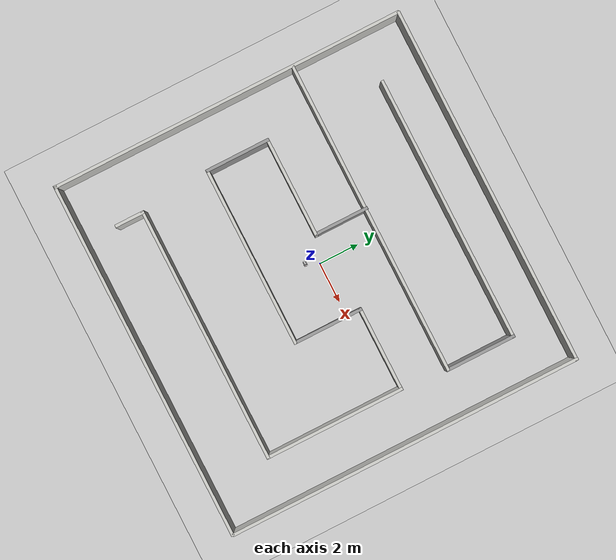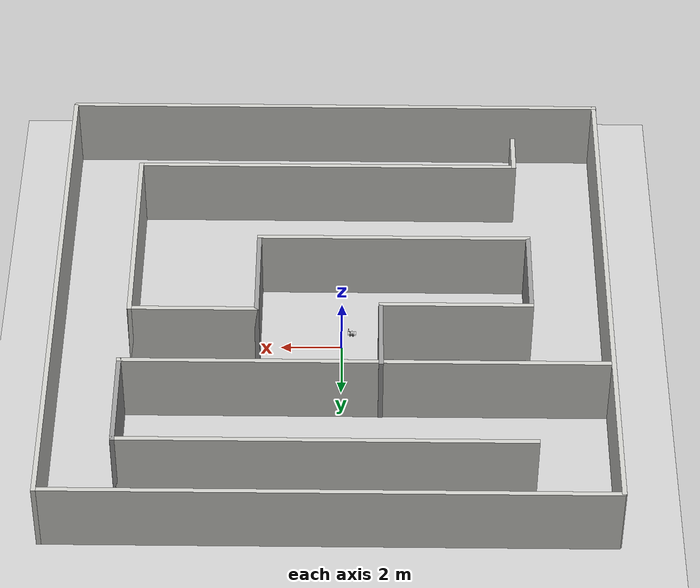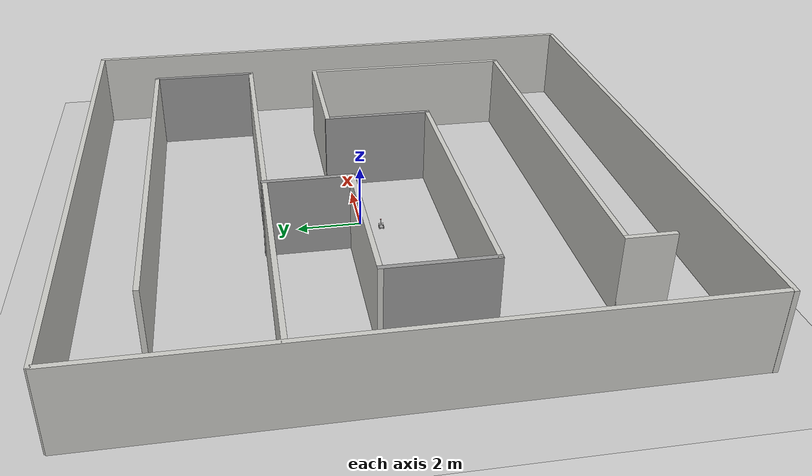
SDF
<sdf version="1.7">
 <world name="default">
  <light name="sun" type="directional">
   <pose>0 0 10 0 -0 0</pose>
   <diffuse>0.8 0.8 0.8 1</diffuse>
   <specular>0.2 0.2 0.2 1</specular>
   <attenuation>
    <range>1000</range>
    <constant>0.9</constant>
    <linear>0.01</linear>
    <quadratic>0.001</quadratic>
   </attenuation>
   <direction>-0.5 0.1 -0.9</direction>
   <spot><inner_angle>0</inner_angle><outer_angle>0</outer_angle><falloff>0</falloff></spot>
  </light>
  <model name="ground_plane">
   <static>1</static>
   <link name="link">
    <collision name="collision">
     <geometry><plane><normal>0 0 1</normal><size>100 100</size></plane></geometry>
     <surface><friction><ode><mu>100</mu><mu2>50</mu2></ode></friction></surface>
    </collision>
    <visual name="visual">
     <cast_shadows>0</cast_shadows>
     <geometry><plane><normal>0 0 1</normal><size>100 100</size></plane></geometry>
     <material>
      <script><uri>file://media/materials/scripts/gazebo.material</uri><name>Gazebo/Grey</name></script>
     </material>
    </visual>
   </link>
  </model>
  <gravity>0 0 -9.8</gravity>
  <magnetic_field>6e-06 2.3e-05 -4.2e-05</magnetic_field>
  <atmosphere type="adiabatic"/>
  <physics type="ode">
   <max_step_size>0.001</max_step_size>
   <real_time_factor>1</real_time_factor>
   <real_time_update_rate>1000</real_time_update_rate>
  </physics>
  <scene><ambient>0.4 0.4 0.4 1</ambient><background>0.7 0.7 0.7 1</background><shadows>1</shadows></scene>
  <audio><device>default</device></audio>
  <spherical_coordinates>
   <surface_model>EARTH_WGS84</surface_model>
   <latitude_deg>0</latitude_deg>
   <longitude_deg>0</longitude_deg>
   <elevation>0</elevation>
   <heading_deg>0</heading_deg>
  </spherical_coordinates>
  <model name="modelTest206">
   <pose>0.329469 -0.393625 0 0 -0 0</pose>
   <link name="Wall_0">
    <collision name="Wall_0_Collision">
     <geometry><box><size>17.75 0.15 2.5</size></box></geometry>
     <pose>0 0 1.25 0 -0 0</pose>
    </collision>
    <visual name="Wall_0_Visual">
     <pose>0 0 1.25 0 -0 0</pose>
     <geometry><box><size>17.75 0.15 2.5</size></box></geometry>
     <material>
      <script><uri>file://media/materials/scripts/gazebo.material</uri><name>Gazebo/CeilingTiled</name></script>
      <ambient>1 1 1 1</ambient>
     </material>
     <meta><layer>0</layer></meta>
    </visual>
    <pose>-8.93998 -0.009696 0 0 -0 1.5708</pose>
   </link>
   <link name="Wall_10">
    <collision name="Wall_10_Collision">
     <geometry><box><size>15.75 0.15 2.5</size></box></geometry>
     <pose>0 0 1.25 0 -0 0</pose>
    </collision>
    <visual name="Wall_10_Visual">
     <pose>0 0 1.25 0 -0 0</pose>
     <geometry><box><size>15.75 0.15 2.5</size></box></geometry>
     <material>
      <script><uri>file://media/materials/scripts/gazebo.material</uri><name>Gazebo/CeilingTiled</name></script>
      <ambient>1 1 1 1</ambient>
     </material>
     <meta><layer>0</layer></meta>
    </visual>
    <pose>-1.09895 3.38175 0 0 -0 3.14159</pose>
   </link>
   <link name="Wall_12">
    <collision name="Wall_12_Collision">
     <geometry><box><size>2.75 0.15 2.5</size></box></geometry>
     <pose>0 0 1.25 0 -0 0</pose>
    </collision>
    <visual name="Wall_12_Visual">
     <pose>0 0 1.25 0 -0 0</pose>
     <geometry><box><size>2.75 0.15 2.5</size></box></geometry>
     <material>
      <script><uri>file://media/materials/scripts/gazebo.material</uri><name>Gazebo/Grey</name></script>
      <ambient>1 1 1 1</ambient>
     </material>
     <meta><layer>0</layer></meta>
    </visual>
    <pose>-1.58474 2.11439 0 0 -0 -1.5708</pose>
   </link>
   <link name="Wall_13">
    <collision name="Wall_13_Collision">
     <geometry><box><size>5 0.15 2.5</size></box></geometry>
     <pose>0 0 1.25 0 -0 0</pose>
    </collision>
    <visual name="Wall_13_Visual">
     <pose>0 0 1.25 0 -0 0</pose>
     <geometry><box><size>5 0.15 2.5</size></box></geometry>
     <material>
      <script><uri>file://media/materials/scripts/gazebo.material</uri><name>Gazebo/CeilingTiled</name></script>
      <ambient>1 1 1 1</ambient>
     </material>
     <meta><layer>0</layer></meta>
    </visual>
    <pose>-4.00974 0.814392 0 0 -0 3.14159</pose>
   </link>
   <link name="Wall_14">
    <collision name="Wall_14_Collision">
     <geometry><box><size>3.25 0.15 2.5</size></box></geometry>
     <pose>0 0 1.25 0 -0 0</pose>
    </collision>
    <visual name="Wall_14_Visual">
     <pose>0 0 1.25 0 -0 0</pose>
     <geometry><box><size>3.25 0.15 2.5</size></box></geometry>
     <material>
      <script><uri>file://media/materials/scripts/gazebo.material</uri><name>Gazebo/Grey</name></script>
      <ambient>1 1 1 1</ambient>
     </material>
     <meta><layer>0</layer></meta>
    </visual>
    <pose>-6.43474 -0.735608 0 0 -0 -1.5708</pose>
   </link>
   <link name="Wall_15">
    <collision name="Wall_15_Collision">
     <geometry><box><size>9 0.15 2.5</size></box></geometry>
     <pose>0 0 1.25 0 -0 0</pose>
    </collision>
    <visual name="Wall_15_Visual">
     <pose>0 0 1.25 0 -0 0</pose>
     <geometry><box><size>9 0.15 2.5</size></box></geometry>
     <material>
      <script><uri>file://media/materials/scripts/gazebo.material</uri><name>Gazebo/CeilingTiled</name></script>
      <ambient>1 1 1 1</ambient>
     </material>
     <meta><layer>0</layer></meta>
    </visual>
    <pose>-2.00974 -2.28561 0 0 -0 0</pose>
   </link>
   <link name="Wall_16">
    <collision name="Wall_16_Collision">
     <geometry><box><size>3.5 0.15 2.5</size></box></geometry>
     <pose>0 0 1.25 0 -0 0</pose>
    </collision>
    <visual name="Wall_16_Visual">
     <pose>0 0 1.25 0 -0 0</pose>
     <geometry><box><size>3.5 0.15 2.5</size></box></geometry>
     <material>
      <script><uri>file://media/materials/scripts/gazebo.material</uri><name>Gazebo/Grey</name></script>
      <ambient>1 1 1 1</ambient>
     </material>
     <meta><layer>0</layer></meta>
    </visual>
    <pose>2.41526 -0.610608 0 0 -0 1.5708</pose>
   </link>
   <link name="Wall_17">
    <collision name="Wall_17_Collision">
     <geometry><box><size>4.25 0.15 2.5</size></box></geometry>
     <pose>0 0 1.25 0 -0 0</pose>
    </collision>
    <visual name="Wall_17_Visual">
     <pose>0 0 1.25 0 -0 0</pose>
     <geometry><box><size>4.25 0.15 2.5</size></box></geometry>
     <material>
      <script><uri>file://media/materials/scripts/gazebo.material</uri><name>Gazebo/CeilingTiled</name></script>
      <ambient>1 1 1 1</ambient>
     </material>
     <meta><layer>0</layer></meta>
    </visual>
    <pose>4.46526 1.06439 0 0 -0 0</pose>
   </link>
   <link name="Wall_18">
    <collision name="Wall_18_Collision">
     <geometry><box><size>7 0.15 2.5</size></box></geometry>
     <pose>0 0 1.25 0 -0 0</pose>
    </collision>
    <visual name="Wall_18_Visual">
     <pose>0 0 1.25 0 -0 0</pose>
     <geometry><box><size>7 0.15 2.5</size></box></geometry>
     <material>
      <script><uri>file://media/materials/scripts/gazebo.material</uri><name>Gazebo/CeilingTiled</name></script>
      <ambient>1 1 1 1</ambient>
     </material>
     <meta><layer>0</layer></meta>
    </visual>
    <pose>6.51526 -2.36061 0 0 -0 -1.5708</pose>
   </link>
   <link name="Wall_19">
    <collision name="Wall_19_Collision">
     <geometry><box><size>12.75 0.15 2.5</size></box></geometry>
     <pose>0 0 1.25 0 -0 0</pose>
    </collision>
    <visual name="Wall_19_Visual">
     <pose>0 0 1.25 0 -0 0</pose>
     <geometry><box><size>12.75 0.15 2.5</size></box></geometry>
     <material>
      <script><uri>file://media/materials/scripts/gazebo.material</uri><name>Gazebo/CeilingTiled</name></script>
      <ambient>1 1 1 1</ambient>
     </material>
     <meta><layer>0</layer></meta>
    </visual>
    <pose>0.215264 -5.78561 0 0 -0 3.14159</pose>
   </link>
   <link name="Wall_2">
    <collision name="Wall_2_Collision">
     <geometry><box><size>18 0.15 2.5</size></box></geometry>
     <pose>0 0 1.25 0 -0 0</pose>
    </collision>
    <visual name="Wall_2_Visual">
     <pose>0 0 1.25 0 -0 0</pose>
     <geometry><box><size>18 0.15 2.5</size></box></geometry>
     <material>
      <script><uri>file://media/materials/scripts/gazebo.material</uri><name>Gazebo/CeilingTiled</name></script>
      <ambient>1 1 1 1</ambient>
     </material>
     <meta><layer>0</layer></meta>
    </visual>
    <pose>-0.021963 -8.83663 0 0 -0 3.14159</pose>
   </link>
   <link name="Wall_20">
    <collision name="Wall_20_Collision">
     <geometry><box><size>1.5 0.15 2.5</size></box></geometry>
     <pose>0 0 1.25 0 -0 0</pose>
    </collision>
    <visual name="Wall_20_Visual">
     <pose>0 0 1.25 0 -0 0</pose>
     <geometry><box><size>1.5 0.15 2.5</size></box></geometry>
     <material>
      <script><uri>file://media/materials/scripts/gazebo.material</uri><name>Gazebo/CeilingTiled</name></script>
      <ambient>1 1 1 1</ambient>
     </material>
     <meta><layer>0</layer></meta>
    </visual>
    <pose>-6.08474 -6.46061 0 0 -0 -1.5708</pose>
   </link>
   <link name="Wall_4">
    <collision name="Wall_4_Collision">
     <geometry><box><size>18 0.15 2.5</size></box></geometry>
     <pose>0 0 1.25 0 -0 0</pose>
    </collision>
    <visual name="Wall_4_Visual">
     <pose>0 0 1.25 0 -0 0</pose>
     <geometry><box><size>18 0.15 2.5</size></box></geometry>
     <material>
      <script><uri>file://media/materials/scripts/gazebo.material</uri><name>Gazebo/CeilingTiled</name></script>
      <ambient>1 1 1 1</ambient>
     </material>
     <meta><layer>0</layer></meta>
    </visual>
    <pose>0.021961 8.83663 0 0 -0 3.14159</pose>
   </link>
   <link name="Wall_6">
    <collision name="Wall_6_Collision">
     <geometry><box><size>17.75 0.15 2.5</size></box></geometry>
     <pose>0 0 1.25 0 -0 0</pose>
    </collision>
    <visual name="Wall_6_Visual">
     <pose>0 0 1.25 0 -0 0</pose>
     <geometry><box><size>17.75 0.15 2.5</size></box></geometry>
     <material>
      <script><uri>file://media/materials/scripts/gazebo.material</uri><name>Gazebo/CeilingTiled</name></script>
      <ambient>1 1 1 1</ambient>
     </material>
     <meta><layer>0</layer></meta>
    </visual>
    <pose>8.94696 0.036627 0 0 -0 -1.5708</pose>
   </link>
   <link name="Wall_8">
    <collision name="Wall_8_Collision">
     <geometry><box><size>13.25 0.15 2.5</size></box></geometry>
     <pose>0 0 1.25 0 -0 0</pose>
    </collision>
    <visual name="Wall_8_Visual">
     <pose>0 0 1.25 0 -0 0</pose>
     <geometry><box><size>13.25 0.15 2.5</size></box></geometry>
     <material>
      <script><uri>file://media/materials/scripts/gazebo.material</uri><name>Gazebo/CeilingTiled</name></script>
      <ambient>1 1 1 1</ambient>
     </material>
     <meta><layer>0</layer></meta>
    </visual>
    <pose>0.15105 6.73175 0 0 -0 0</pose>
   </link>
   <link name="Wall_9">
    <collision name="Wall_9_Collision">
     <geometry><box><size>3.5 0.15 2.5</size></box></geometry>
     <pose>0 0 1.25 0 -0 0</pose>
    </collision>
    <visual name="Wall_9_Visual">
     <pose>0 0 1.25 0 -0 0</pose>
     <geometry><box><size>3.5 0.15 2.5</size></box></geometry>
     <material>
      <script><uri>file://media/materials/scripts/gazebo.material</uri><name>Gazebo/Grey</name></script>
      <ambient>1 1 1 1</ambient>
     </material>
     <meta><layer>0</layer></meta>
    </visual>
    <pose>6.70105 5.05675 0 0 -0 -1.5708</pose>
   </link>
   <static>1</static>
  </model>
  <model name="robot">
   <link name="base_link">
    <inertial>
     <pose>0.154393 0 0.055454 0 -0 0</pose>
     <mass>0.332369</mass>
     <inertia>
      <ixx>0.00192367</ixx>
      <ixy>-9.69902e-21</ixy>
      <ixz>-1.3064e-05</ixz>
      <iyy>0.00275233</iyy>
      <iyz>4.56769e-21</iyz>
      <izz>0.00144817</izz>
     </inertia>
    </inertial>
    <collision name="base_link_fixed_joint_lump__chassis11_collision">
     <pose>0.0225 0 0.096 0 -0 0</pose>
     <geometry><box><size>0.045 0.15 0.0025</size></box></geometry>
    </collision>
    <collision name="base_link_fixed_joint_lump__chassis1_collision_1">
     <pose>0.0225 0 0.045 0 -0 0</pose>
     <geometry><box><size>0.045 0.15 0.0025</size></box></geometry>
    </collision>
    <collision name="base_link_fixed_joint_lump__chassis21_collision_2">
     <pose>0.0825 0 0.096 0 -0 0</pose>
     <geometry><box><size>0.075 0.09 0.0025</size></box></geometry>
    </collision>
    <collision name="base_link_fixed_joint_lump__chassis2_collision_3">
     <pose>0.0825 0 0.045 0 -0 0</pose>
     <geometry><box><size>0.075 0.09 0.0025</size></box></geometry>
    </collision>
    <collision name="base_link_fixed_joint_lump__chassis31_collision_4">
     <pose>0.13 0 0.096 0 -0 0</pose>
     <geometry><box><size>0.04 0.15 0.0025</size></box></geometry>
    </collision>
    <collision name="base_link_fixed_joint_lump__chassis3_collision_5">
     <pose>0.13 0 0.045 0 -0 0</pose>
     <geometry><box><size>0.02 0.15 0.0025</size></box></geometry>
    </collision>
    <collision name="base_link_fixed_joint_lump__batterie_collision_6">
     <pose>0.13 0 0.05875 0 -0 0</pose>
     <geometry><box><size>0.1375 0.045 0.025</size></box></geometry>
    </collision>
    <collision name="base_link_fixed_joint_lump__chassis41_collision_7">
     <pose>0.1775 0 0.096 0 -0 0</pose>
     <geometry><box><size>0.075 0.09 0.0025</size></box></geometry>
    </collision>
    <collision name="base_link_fixed_joint_lump__camera_link1_collision_8">
     <pose>0.16 0 0.0985 0 -0 0</pose>
     <geometry><box><size>0.02 0.02 0.0025</size></box></geometry>
    </collision>
    <collision name="base_link_fixed_joint_lump__camera_link2_collision_9">
     <pose>0.175 0 0.10225 0 -0 0</pose>
     <geometry><box><size>0.01 0.02 0.01</size></box></geometry>
    </collision>
    <collision name="base_link_fixed_joint_lump__camera_link3_collision_10">
     <pose>0.17 0 0.11125 0 -0 0</pose>
     <geometry><box><size>0.04 0.02 0.008</size></box></geometry>
    </collision>
    <collision name="base_link_fixed_joint_lump__camera_link4_collision_11">
     <pose>0.21 0 0.13575 0 0.775193 0</pose>
     <geometry><box><size>0.005 0.02 0.07</size></box></geometry>
    </collision>
    <collision name="base_link_fixed_joint_lump__camera_link5_collision_12">
     <pose>0.2425 0 0.15995 0 -0 0</pose>
     <geometry><box><size>0.02 0.02 0.005</size></box></geometry>
    </collision>
    <collision name="base_link_fixed_joint_lump__camera_link6_collision_13">
     <pose>0.2425 0 0.18745 0 -0 0</pose>
     <geometry><cylinder><length>0.05</length><radius>0.004</radius></cylinder></geometry>
    </collision>
    <collision name="base_link_fixed_joint_lump__camera_link7_collision_14">
     <pose>0.2425 0 0.21945 0 -0 0</pose>
     <geometry><cylinder><length>0.014</length><radius>0.009</radius></cylinder></geometry>
    </collision>
    <collision name="base_link_fixed_joint_lump__camera_link8_collision_15">
     <pose>0.2425 0 0.23945 0 -0 0</pose>
     <geometry><box><size>0.01 0.034 0.03</size></box></geometry>
    </collision>
    <collision name="base_link_fixed_joint_lump__chassis4_collision_16">
     <pose>0.1775 0 0.045 0 -0 0</pose>
     <geometry><box><size>0.075 0.09 0.0025</size></box></geometry>
    </collision>
    <collision name="base_link_fixed_joint_lump__caster_wheel1_collision_17">
     <pose>0.1775 0.065 0.025 -1.5708 0 0</pose>
     <geometry><cylinder><length>0.025</length><radius>0.0335</radius></cylinder></geometry>
     <surface><friction><ode><mu>1e-06</mu><mu2>1e-06</mu2></ode></friction></surface>
    </collision>
    <collision name="base_link_fixed_joint_lump__caster_wheel2_collision_18">
     <pose>0.1775 -0.065 0.025 1.5708 -0 0</pose>
     <geometry><cylinder><length>0.025</length><radius>0.0335</radius></cylinder></geometry>
     <surface><friction><ode><mu>1e-06</mu><mu2>1e-06</mu2></ode></friction></surface>
    </collision>
    <collision name="base_link_fixed_joint_lump__chassis51_collision_19">
     <pose>0.2375 0 0.096 0 -0 0</pose>
     <geometry><box><size>0.045 0.15 0.0025</size></box></geometry>
    </collision>
    <collision name="base_link_fixed_joint_lump__chassis5_collision_20">
     <pose>0.2375 0 0.045 0 -0 0</pose>
     <geometry><box><size>0.045 0.15 0.0025</size></box></geometry>
    </collision>
    <collision name="base_link_fixed_joint_lump__cylindre3_collision_21">
     <pose>0.25 -0.03 0.07 0 -0 0</pose>
     <geometry><cylinder><length>0.05</length><radius>0.003</radius></cylinder></geometry>
    </collision>
    <collision name="base_link_fixed_joint_lump__cylindre4_collision_22">
     <pose>0.25 0.03 0.07 0 -0 0</pose>
     <geometry><cylinder><length>0.05</length><radius>0.003</radius></cylinder></geometry>
    </collision>
    <collision name="base_link_fixed_joint_lump__cylindre1_collision_23">
     <pose>0.01 0.03 0.07 0 -0 0</pose>
     <geometry><cylinder><length>0.05</length><radius>0.003</radius></cylinder></geometry>
    </collision>
    <collision name="base_link_fixed_joint_lump__cylindre2_collision_24">
     <pose>0.01 -0.03 0.07 0 -0 0</pose>
     <geometry><cylinder><length>0.05</length><radius>0.003</radius></cylinder></geometry>
    </collision>
    <visual name="base_link_fixed_joint_lump__chassis11_visual">
     <pose>0.0225 0 0.096 0 -0 0</pose>
     <geometry><box><size>0.045 0.15 0.0025</size></box></geometry>
     <material>
      <script><name>Gazebo/White</name><uri>file://media/materials/scripts/gazebo.material</uri></script>
     </material>
    </visual>
    <visual name="base_link_fixed_joint_lump__chassis1_visual_1">
     <pose>0.0225 0 0.045 0 -0 0</pose>
     <geometry><box><size>0.045 0.15 0.0025</size></box></geometry>
     <material>
      <script><name>Gazebo/White</name><uri>file://media/materials/scripts/gazebo.material</uri></script>
     </material>
    </visual>
    <visual name="base_link_fixed_joint_lump__chassis21_visual_2">
     <pose>0.0825 0 0.096 0 -0 0</pose>
     <geometry><box><size>0.075 0.09 0.0025</size></box></geometry>
     <material>
      <script><name>Gazebo/White</name><uri>file://media/materials/scripts/gazebo.material</uri></script>
     </material>
    </visual>
    <visual name="base_link_fixed_joint_lump__chassis2_visual_3">
     <pose>0.0825 0 0.045 0 -0 0</pose>
     <geometry><box><size>0.075 0.09 0.0025</size></box></geometry>
     <material>
      <script><name>Gazebo/White</name><uri>file://media/materials/scripts/gazebo.material</uri></script>
     </material>
    </visual>
    <visual name="base_link_fixed_joint_lump__chassis31_visual_4">
     <pose>0.13 0 0.096 0 -0 0</pose>
     <geometry><box><size>0.04 0.15 0.0025</size></box></geometry>
     <material>
      <script><name>Gazebo/White</name><uri>file://media/materials/scripts/gazebo.material</uri></script>
     </material>
    </visual>
    <visual name="base_link_fixed_joint_lump__chassis3_visual_5">
     <pose>0.13 0 0.045 0 -0 0</pose>
     <geometry><box><size>0.02 0.15 0.0025</size></box></geometry>
     <material>
      <script><name>Gazebo/White</name><uri>file://media/materials/scripts/gazebo.material</uri></script>
     </material>
    </visual>
    <visual name="base_link_fixed_joint_lump__batterie_visual_6">
     <pose>0.13 0 0.05875 0 -0 0</pose>
     <geometry><box><size>0.1375 0.045 0.025</size></box></geometry>
     <material>
      <script><name>Gazebo/Black</name><uri>file://media/materials/scripts/gazebo.material</uri></script>
     </material>
    </visual>
    <visual name="base_link_fixed_joint_lump__chassis41_visual_7">
     <pose>0.1775 0 0.096 0 -0 0</pose>
     <geometry><box><size>0.075 0.09 0.0025</size></box></geometry>
     <material>
      <script><name>Gazebo/White</name><uri>file://media/materials/scripts/gazebo.material</uri></script>
     </material>
    </visual>
    <visual name="base_link_fixed_joint_lump__camera_link1_visual_8">
     <pose>0.16 0 0.0985 0 -0 0</pose>
     <geometry><box><size>0.02 0.02 0.0025</size></box></geometry>
    </visual>
    <visual name="base_link_fixed_joint_lump__camera_link2_visual_9">
     <pose>0.175 0 0.10225 0 -0 0</pose>
     <geometry><box><size>0.01 0.02 0.01</size></box></geometry>
    </visual>
    <visual name="base_link_fixed_joint_lump__camera_link3_visual_10">
     <pose>0.17 0 0.11125 0 -0 0</pose>
     <geometry><box><size>0.04 0.02 0.008</size></box></geometry>
    </visual>
    <visual name="base_link_fixed_joint_lump__camera_link4_visual_11">
     <pose>0.21 0 0.13575 0 0.775193 0</pose>
     <geometry><box><size>0.005 0.02 0.07</size></box></geometry>
    </visual>
    <visual name="base_link_fixed_joint_lump__camera_link5_visual_12">
     <pose>0.2425 0 0.15995 0 -0 0</pose>
     <geometry><box><size>0.02 0.02 0.005</size></box></geometry>
    </visual>
    <visual name="base_link_fixed_joint_lump__camera_link6_visual_13">
     <pose>0.2425 0 0.18745 0 -0 0</pose>
     <geometry><cylinder><length>0.05</length><radius>0.004</radius></cylinder></geometry>
    </visual>
    <visual name="base_link_fixed_joint_lump__camera_link7_visual_14">
     <pose>0.2425 0 0.21945 0 -0 0</pose>
     <geometry><cylinder><length>0.014</length><radius>0.009</radius></cylinder></geometry>
    </visual>
    <visual name="base_link_fixed_joint_lump__camera_link8_visual_15">
     <pose>0.2425 0 0.23945 0 -0 0</pose>
     <geometry><box><size>0.01 0.034 0.03</size></box></geometry>
     <material>
      <script><name>Gazebo/Red</name><uri>file://media/materials/scripts/gazebo.material</uri></script>
     </material>
    </visual>
    <visual name="base_link_fixed_joint_lump__chassis4_visual_16">
     <pose>0.1775 0 0.045 0 -0 0</pose>
     <geometry><box><size>0.075 0.09 0.0025</size></box></geometry>
     <material>
      <script><name>Gazebo/White</name><uri>file://media/materials/scripts/gazebo.material</uri></script>
     </material>
    </visual>
    <visual name="base_link_fixed_joint_lump__caster_wheel1_visual_17">
     <pose>0.1775 0.065 0.025 -1.5708 0 0</pose>
     <geometry><cylinder><length>0.025</length><radius>0.0335</radius></cylinder></geometry>
     <material>
      <script><name>Gazebo/Black</name><uri>file://media/materials/scripts/gazebo.material</uri></script>
     </material>
    </visual>
    <visual name="base_link_fixed_joint_lump__caster_wheel2_visual_18">
     <pose>0.1775 -0.065 0.025 1.5708 -0 0</pose>
     <geometry><cylinder><length>0.025</length><radius>0.0335</radius></cylinder></geometry>
     <material>
      <script><name>Gazebo/Black</name><uri>file://media/materials/scripts/gazebo.material</uri></script>
     </material>
    </visual>
    <visual name="base_link_fixed_joint_lump__chassis51_visual_19">
     <pose>0.2375 0 0.096 0 -0 0</pose>
     <geometry><box><size>0.045 0.15 0.0025</size></box></geometry>
     <material>
      <script><name>Gazebo/White</name><uri>file://media/materials/scripts/gazebo.material</uri></script>
     </material>
    </visual>
    <visual name="base_link_fixed_joint_lump__chassis5_visual_20">
     <pose>0.2375 0 0.045 0 -0 0</pose>
     <geometry><box><size>0.045 0.15 0.0025</size></box></geometry>
     <material>
      <script><name>Gazebo/White</name><uri>file://media/materials/scripts/gazebo.material</uri></script>
     </material>
    </visual>
    <visual name="base_link_fixed_joint_lump__cylindre3_visual_21">
     <pose>0.25 -0.03 0.07 0 -0 0</pose>
     <geometry><cylinder><length>0.05</length><radius>0.003</radius></cylinder></geometry>
     <material>
      <script><name>Gazebo/White</name><uri>file://media/materials/scripts/gazebo.material</uri></script>
     </material>
    </visual>
    <visual name="base_link_fixed_joint_lump__cylindre4_visual_22">
     <pose>0.25 0.03 0.07 0 -0 0</pose>
     <geometry><cylinder><length>0.05</length><radius>0.003</radius></cylinder></geometry>
     <material>
      <script><name>Gazebo/White</name><uri>file://media/materials/scripts/gazebo.material</uri></script>
     </material>
    </visual>
    <visual name="base_link_fixed_joint_lump__cylindre1_visual_23">
     <pose>0.01 0.03 0.07 0 -0 0</pose>
     <geometry><cylinder><length>0.05</length><radius>0.003</radius></cylinder></geometry>
     <material>
      <script><name>Gazebo/White</name><uri>file://media/materials/scripts/gazebo.material</uri></script>
     </material>
    </visual>
    <visual name="base_link_fixed_joint_lump__cylindre2_visual_24">
     <pose>0.01 -0.03 0.07 0 -0 0</pose>
     <geometry><cylinder><length>0.05</length><radius>0.003</radius></cylinder></geometry>
     <material>
      <script><name>Gazebo/White</name><uri>file://media/materials/scripts/gazebo.material</uri></script>
     </material>
    </visual>
    <sensor name="camera" type="camera">
     <visualize>1</visualize>
     <update_rate>10</update_rate>
     <camera>
      <horizontal_fov>1.1519</horizontal_fov>
      <image><format>R8G8B8</format><width>640</width><height>480</height></image>
      <clip><near>0.03</near><far>8</far></clip>
     </camera>
     <plugin name="camera_controller" filename="libgazebo_ros_camera.so">
      <frame_name>camera_link_optical</frame_name>
     </plugin>
     <pose>0.2425 0 0.23945 0 -0 0</pose>
    </sensor>
   </link>
   <joint name="rear_left_wheel_joint" type="revolute">
    <pose relative_to="base_link">0.0825 0.065 0.025 -1.5708 0 0</pose>
    <parent>base_link</parent>
    <child>rear_left</child>
    <axis>
     <xyz>0 0 1</xyz>
     <limit><lower>-1e+16</lower><upper>1e+16</upper></limit>
     <dynamics><spring_reference>0</spring_reference><spring_stiffness>0</spring_stiffness></dynamics>
    </axis>
   </joint>
   <link name="rear_left">
    <pose relative_to="rear_left_wheel_joint">0 0 0 0 -0 0</pose>
    <inertial>
     <pose>0 0.065 -0.02 0 -0 0</pose>
     <mass>0.0440707</mass>
     <inertia>
      <ixx>1.46599e-05</ixx>
      <ixy>0</ixy>
      <ixz>0</ixz>
      <iyy>1.46599e-05</iyy>
      <iyz>0</iyz>
      <izz>2.47291e-05</izz>
     </inertia>
    </inertial>
    <collision name="rear_left_collision">
     <geometry><cylinder><length>0.025</length><radius>0.0335</radius></cylinder></geometry>
     <surface><friction><ode><mu>10000</mu><mu2>10000</mu2></ode></friction></surface>
    </collision>
    <visual name="rear_left_visual">
     <geometry><cylinder><length>0.025</length><radius>0.0335</radius></cylinder></geometry>
     <material>
      <script><name>Gazebo/Black</name><uri>file://media/materials/scripts/gazebo.material</uri></script>
     </material>
    </visual>
   </link>
   <joint name="rear_right_wheel_joint" type="revolute">
    <pose relative_to="base_link">0.0825 -0.065 0.025 1.5708 -0 0</pose>
    <parent>base_link</parent>
    <child>rear_right</child>
    <axis>
     <xyz>0 0 -1</xyz>
     <limit><lower>-1e+16</lower><upper>1e+16</upper></limit>
     <dynamics><spring_reference>0</spring_reference><spring_stiffness>0</spring_stiffness></dynamics>
    </axis>
   </joint>
   <link name="rear_right">
    <pose relative_to="rear_right_wheel_joint">0 0 0 0 -0 0</pose>
    <inertial>
     <pose>0 -0.065 -0.02 0 -0 0</pose>
     <mass>0.0440707</mass>
     <inertia>
      <ixx>1.46599e-05</ixx>
      <ixy>0</ixy>
      <ixz>0</ixz>
      <iyy>1.46599e-05</iyy>
      <iyz>0</iyz>
      <izz>2.47291e-05</izz>
     </inertia>
    </inertial>
    <collision name="rear_right_collision">
     <geometry><cylinder><length>0.025</length><radius>0.0335</radius></cylinder></geometry>
     <surface><friction><ode><mu>10000</mu><mu2>10000</mu2></ode></friction></surface>
    </collision>
    <visual name="rear_right_visual">
     <geometry><cylinder><length>0.025</length><radius>0.0335</radius></cylinder></geometry>
     <material>
      <script><name>Gazebo/Black</name><uri>file://media/materials/scripts/gazebo.material</uri></script>
     </material>
    </visual>
   </link>
   <static>0</static>
   <plugin name="diff_drive" filename="libgazebo_ros_diff_drive.so">
    <left_joint>rear_left_wheel_joint</left_joint>
    <right_joint>rear_right_wheel_joint</right_joint>
    <wheel_separation>0.12</wheel_separation>
    <wheel_diameter>0.067</wheel_diameter>
    <max_wheel_torque>200</max_wheel_torque>
    <max_wheel_acceleration>10.0</max_wheel_acceleration>
    <odometry_frame>odom</odometry_frame>
    <robot_base_frame>base_link</robot_base_frame>
    <publish_odom>1</publish_odom>
    <publish_odom_tf>1</publish_odom_tf>
    <publish_wheel_tf>1</publish_wheel_tf>
   </plugin>
   <pose>-0.45248 -0.609756 0.008502 -1e-06 1.1e-05 -0.047744</pose>
  </model>
 </world>
</sdf>
